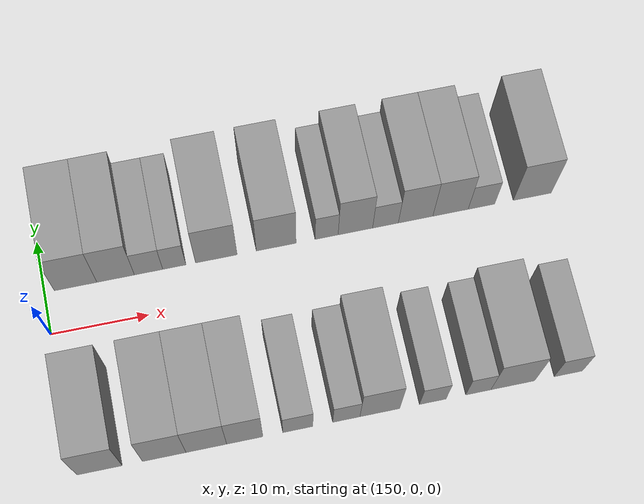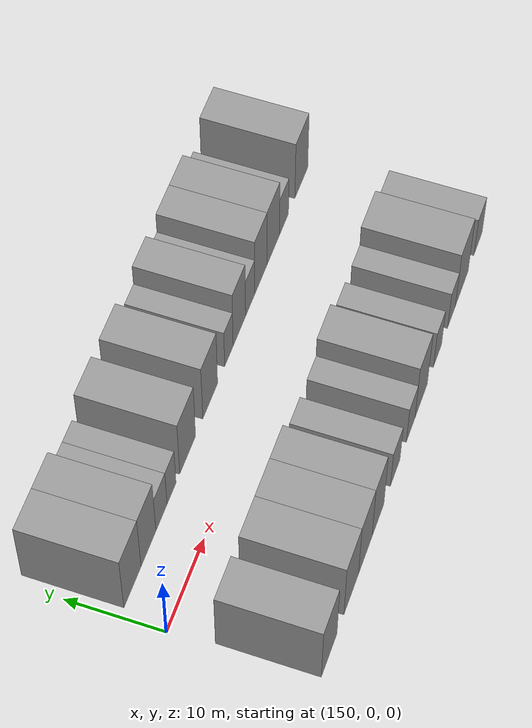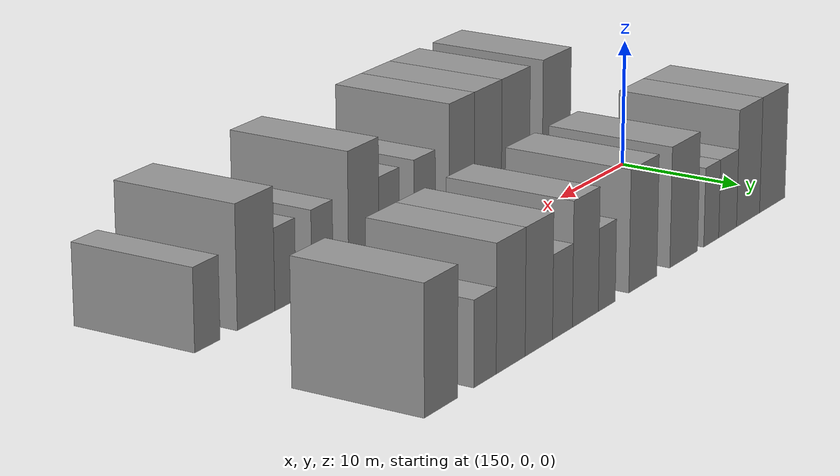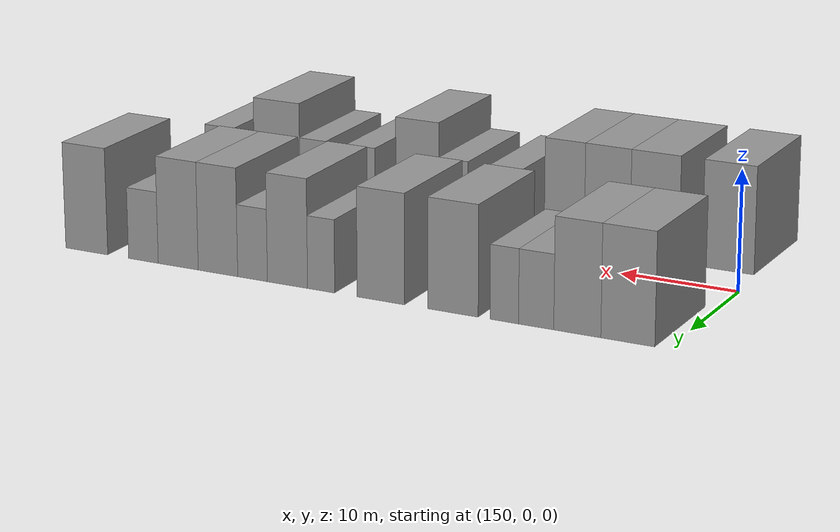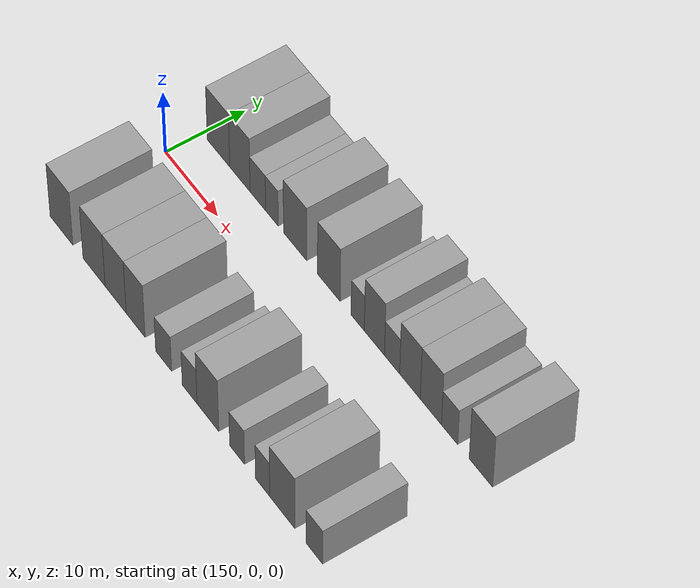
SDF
<sdf version="1.6">
 <world name="default">
  <model name="building_35">
   <static>1</static>
   <pose>153.2073 9.5000 0 0.000000 0.000000 1.570796</pose>
   <link name="link">
    <pose>0 0 4.50 0 0 0</pose>
    <collision name="collision"><geometry><box><size>10.0000 4.3690 9.0000</size></box></geometry></collision>
    <visual name="visual">
     <cast_shadows>0</cast_shadows>
     <geometry><box><size>10.0000 4.3690 9.0000</size></box></geometry>
     <material>
      <script>
       <uri>model://grey_wall/materials/scripts</uri>
       <uri>model://grey_wall/materials/textures</uri>
       <name>vrc/grey_wall</name>
      </script>
     </material>
    </visual>
   </link>
  </model>
  <model name="building_36">
   <static>1</static>
   <pose>157.3263 9.5000 0 0.000000 0.000000 1.570796</pose>
   <link name="link">
    <pose>0 0 4.50 0 0 0</pose>
    <collision name="collision"><geometry><box><size>10.0000 3.8691 9.0000</size></box></geometry></collision>
    <visual name="visual">
     <cast_shadows>0</cast_shadows>
     <geometry><box><size>10.0000 3.8691 9.0000</size></box></geometry>
     <material>
      <script>
       <uri>model://grey_wall/materials/scripts</uri>
       <uri>model://grey_wall/materials/textures</uri>
       <name>vrc/grey_wall</name>
      </script>
     </material>
    </visual>
   </link>
  </model>
  <model name="building_37">
   <static>1</static>
   <pose>160.7287 9.5000 0 0.000000 0.000000 1.570796</pose>
   <link name="link">
    <pose>0 0 3.00 0 0 0</pose>
    <collision name="collision"><geometry><box><size>10.0000 2.9357 6.0000</size></box></geometry></collision>
    <visual name="visual">
     <cast_shadows>0</cast_shadows>
     <geometry><box><size>10.0000 2.9357 6.0000</size></box></geometry>
     <material>
      <script>
       <uri>model://grey_wall/materials/scripts</uri>
       <uri>model://grey_wall/materials/textures</uri>
       <name>vrc/grey_wall</name>
      </script>
     </material>
    </visual>
   </link>
  </model>
  <model name="building_38">
   <static>1</static>
   <pose>163.3969 9.5000 0 0.000000 0.000000 1.570796</pose>
   <link name="link">
    <pose>0 0 3.00 0 0 0</pose>
    <collision name="collision"><geometry><box><size>10.0000 2.4005 6.0000</size></box></geometry></collision>
    <visual name="visual">
     <cast_shadows>0</cast_shadows>
     <geometry><box><size>10.0000 2.4005 6.0000</size></box></geometry>
     <material>
      <script>
       <uri>model://grey_wall/materials/scripts</uri>
       <uri>model://grey_wall/materials/textures</uri>
       <name>vrc/grey_wall</name>
      </script>
     </material>
    </visual>
   </link>
  </model>
  <model name="building_39">
   <static>1</static>
   <pose>167.7573 9.5000 0 0.000000 0.000000 1.570796</pose>
   <link name="link">
    <pose>0 0 4.50 0 0 0</pose>
    <collision name="collision"><geometry><box><size>10.0000 4.3204 9.0000</size></box></geometry></collision>
    <visual name="visual">
     <cast_shadows>0</cast_shadows>
     <geometry><box><size>10.0000 4.3204 9.0000</size></box></geometry>
     <material>
      <script>
       <uri>model://grey_wall/materials/scripts</uri>
       <uri>model://grey_wall/materials/textures</uri>
       <name>vrc/grey_wall</name>
      </script>
     </material>
    </visual>
   </link>
  </model>
  <model name="building_40">
   <static>1</static>
   <pose>173.9975 9.5000 0 0.000000 0.000000 1.570796</pose>
   <link name="link">
    <pose>0 0 4.50 0 0 0</pose>
    <collision name="collision"><geometry><box><size>10.0000 4.1599 9.0000</size></box></geometry></collision>
    <visual name="visual">
     <cast_shadows>0</cast_shadows>
     <geometry><box><size>10.0000 4.1599 9.0000</size></box></geometry>
     <material>
      <script>
       <uri>model://grey_wall/materials/scripts</uri>
       <uri>model://grey_wall/materials/textures</uri>
       <name>vrc/grey_wall</name>
      </script>
     </material>
    </visual>
   </link>
  </model>
  <model name="building_41">
   <static>1</static>
   <pose>179.2896 9.5000 0 0.000000 0.000000 1.570796</pose>
   <link name="link">
    <pose>0 0 3.00 0 0 0</pose>
    <collision name="collision"><geometry><box><size>10.0000 2.4242 6.0000</size></box></geometry></collision>
    <visual name="visual">
     <cast_shadows>0</cast_shadows>
     <geometry><box><size>10.0000 2.4242 6.0000</size></box></geometry>
     <material>
      <script>
       <uri>model://grey_wall/materials/scripts</uri>
       <uri>model://grey_wall/materials/textures</uri>
       <name>vrc/grey_wall</name>
      </script>
     </material>
    </visual>
   </link>
  </model>
  <model name="building_42">
   <static>1</static>
   <pose>182.3201 9.5000 0 0.000000 0.000000 1.570796</pose>
   <link name="link">
    <pose>0 0 4.50 0 0 0</pose>
    <collision name="collision"><geometry><box><size>10.0000 3.6369 9.0000</size></box></geometry></collision>
    <visual name="visual">
     <cast_shadows>0</cast_shadows>
     <geometry><box><size>10.0000 3.6369 9.0000</size></box></geometry>
     <material>
      <script>
       <uri>model://grey_wall/materials/scripts</uri>
       <uri>model://grey_wall/materials/textures</uri>
       <name>vrc/grey_wall</name>
      </script>
     </material>
    </visual>
   </link>
  </model>
  <model name="building_43">
   <static>1</static>
   <pose>185.5018 9.5000 0 0.000000 0.000000 1.570796</pose>
   <link name="link">
    <pose>0 0 3.00 0 0 0</pose>
    <collision name="collision"><geometry><box><size>10.0000 2.7267 6.0000</size></box></geometry></collision>
    <visual name="visual">
     <cast_shadows>0</cast_shadows>
     <geometry><box><size>10.0000 2.7267 6.0000</size></box></geometry>
     <material>
      <script>
       <uri>model://grey_wall/materials/scripts</uri>
       <uri>model://grey_wall/materials/textures</uri>
       <name>vrc/grey_wall</name>
      </script>
     </material>
    </visual>
   </link>
  </model>
  <model name="building_44">
   <static>1</static>
   <pose>188.6957 9.5000 0 0.000000 0.000000 1.570796</pose>
   <link name="link">
    <pose>0 0 4.50 0 0 0</pose>
    <collision name="collision"><geometry><box><size>10.0000 3.6610 9.0000</size></box></geometry></collision>
    <visual name="visual">
     <cast_shadows>0</cast_shadows>
     <geometry><box><size>10.0000 3.6610 9.0000</size></box></geometry>
     <material>
      <script>
       <uri>model://grey_wall/materials/scripts</uri>
       <uri>model://grey_wall/materials/textures</uri>
       <name>vrc/grey_wall</name>
      </script>
     </material>
    </visual>
   </link>
  </model>
  <model name="building_45">
   <static>1</static>
   <pose>192.4081 9.5000 0 0.000000 0.000000 1.570796</pose>
   <link name="link">
    <pose>0 0 4.50 0 0 0</pose>
    <collision name="collision"><geometry><box><size>10.0000 3.7639 9.0000</size></box></geometry></collision>
    <visual name="visual">
     <cast_shadows>0</cast_shadows>
     <geometry><box><size>10.0000 3.7639 9.0000</size></box></geometry>
     <material>
      <script>
       <uri>model://grey_wall/materials/scripts</uri>
       <uri>model://grey_wall/materials/textures</uri>
       <name>vrc/grey_wall</name>
      </script>
     </material>
    </visual>
   </link>
  </model>
  <model name="building_46">
   <static>1</static>
   <pose>195.7033 9.5000 0 0.000000 0.000000 1.570796</pose>
   <link name="link">
    <pose>0 0 3.00 0 0 0</pose>
    <collision name="collision"><geometry><box><size>10.0000 2.8263 6.0000</size></box></geometry></collision>
    <visual name="visual">
     <cast_shadows>0</cast_shadows>
     <geometry><box><size>10.0000 2.8263 6.0000</size></box></geometry>
     <material>
      <script>
       <uri>model://grey_wall/materials/scripts</uri>
       <uri>model://grey_wall/materials/textures</uri>
       <name>vrc/grey_wall</name>
      </script>
     </material>
    </visual>
   </link>
  </model>
  <model name="building_47">
   <static>1</static>
   <pose>201.1507 9.5000 0 0.000000 0.000000 1.570796</pose>
   <link name="link">
    <pose>0 0 4.50 0 0 0</pose>
    <collision name="collision"><geometry><box><size>10.0000 4.0687 9.0000</size></box></geometry></collision>
    <visual name="visual">
     <cast_shadows>0</cast_shadows>
     <geometry><box><size>10.0000 4.0687 9.0000</size></box></geometry>
     <material>
      <script>
       <uri>model://grey_wall/materials/scripts</uri>
       <uri>model://grey_wall/materials/textures</uri>
       <name>vrc/grey_wall</name>
      </script>
     </material>
    </visual>
   </link>
  </model>
  <model name="building_86">
   <static>1</static>
   <pose>152.6591 -9.5000 0 0.000000 0.000000 1.570796</pose>
   <link name="link">
    <pose>0 0 4.50 0 0 0</pose>
    <collision name="collision"><geometry><box><size>10.0000 4.4520 9.0000</size></box></geometry></collision>
    <visual name="visual">
     <cast_shadows>0</cast_shadows>
     <geometry><box><size>10.0000 4.4520 9.0000</size></box></geometry>
     <material>
      <script>
       <uri>model://grey_wall/materials/scripts</uri>
       <uri>model://grey_wall/materials/textures</uri>
       <name>vrc/grey_wall</name>
      </script>
     </material>
    </visual>
   </link>
  </model>
  <model name="building_87">
   <static>1</static>
   <pose>159.0327 -9.5000 0 0.000000 0.000000 1.570796</pose>
   <link name="link">
    <pose>0 0 4.50 0 0 0</pose>
    <collision name="collision"><geometry><box><size>10.0000 4.2951 9.0000</size></box></geometry></collision>
    <visual name="visual">
     <cast_shadows>0</cast_shadows>
     <geometry><box><size>10.0000 4.2951 9.0000</size></box></geometry>
     <material>
      <script>
       <uri>model://grey_wall/materials/scripts</uri>
       <uri>model://grey_wall/materials/textures</uri>
       <name>vrc/grey_wall</name>
      </script>
     </material>
    </visual>
   </link>
  </model>
  <model name="building_88">
   <static>1</static>
   <pose>163.2067 -9.5000 0 0.000000 0.000000 1.570796</pose>
   <link name="link">
    <pose>0 0 4.50 0 0 0</pose>
    <collision name="collision"><geometry><box><size>10.0000 4.0529 9.0000</size></box></geometry></collision>
    <visual name="visual">
     <cast_shadows>0</cast_shadows>
     <geometry><box><size>10.0000 4.0529 9.0000</size></box></geometry>
     <material>
      <script>
       <uri>model://grey_wall/materials/scripts</uri>
       <uri>model://grey_wall/materials/textures</uri>
       <name>vrc/grey_wall</name>
      </script>
     </material>
    </visual>
   </link>
  </model>
  <model name="building_89">
   <static>1</static>
   <pose>167.0358 -9.5000 0 0.000000 0.000000 1.570796</pose>
   <link name="link">
    <pose>0 0 4.50 0 0 0</pose>
    <collision name="collision"><geometry><box><size>10.0000 3.6054 9.0000</size></box></geometry></collision>
    <visual name="visual">
     <cast_shadows>0</cast_shadows>
     <geometry><box><size>10.0000 3.6054 9.0000</size></box></geometry>
     <material>
      <script>
       <uri>model://grey_wall/materials/scripts</uri>
       <uri>model://grey_wall/materials/textures</uri>
       <name>vrc/grey_wall</name>
      </script>
     </material>
    </visual>
   </link>
  </model>
  <model name="building_90">
   <static>1</static>
   <pose>172.3378 -9.5000 0 0.000000 0.000000 1.570796</pose>
   <link name="link">
    <pose>0 0 3.00 0 0 0</pose>
    <collision name="collision"><geometry><box><size>10.0000 2.9986 6.0000</size></box></geometry></collision>
    <visual name="visual">
     <cast_shadows>0</cast_shadows>
     <geometry><box><size>10.0000 2.9986 6.0000</size></box></geometry>
     <material>
      <script>
       <uri>model://grey_wall/materials/scripts</uri>
       <uri>model://grey_wall/materials/textures</uri>
       <name>vrc/grey_wall</name>
      </script>
     </material>
    </visual>
   </link>
  </model>
  <model name="building_91">
   <static>1</static>
   <pose>177.2059 -9.5000 0 0.000000 0.000000 1.570796</pose>
   <link name="link">
    <pose>0 0 3.00 0 0 0</pose>
    <collision name="collision"><geometry><box><size>10.0000 2.7375 6.0000</size></box></geometry></collision>
    <visual name="visual">
     <cast_shadows>0</cast_shadows>
     <geometry><box><size>10.0000 2.7375 6.0000</size></box></geometry>
     <material>
      <script>
       <uri>model://grey_wall/materials/scripts</uri>
       <uri>model://grey_wall/materials/textures</uri>
       <name>vrc/grey_wall</name>
      </script>
     </material>
    </visual>
   </link>
  </model>
  <model name="building_92">
   <static>1</static>
   <pose>180.5887 -9.5000 0 0.000000 0.000000 1.570796</pose>
   <link name="link">
    <pose>0 0 4.50 0 0 0</pose>
    <collision name="collision"><geometry><box><size>10.0000 4.0280 9.0000</size></box></geometry></collision>
    <visual name="visual">
     <cast_shadows>0</cast_shadows>
     <geometry><box><size>10.0000 4.0280 9.0000</size></box></geometry>
     <material>
      <script>
       <uri>model://grey_wall/materials/scripts</uri>
       <uri>model://grey_wall/materials/textures</uri>
       <name>vrc/grey_wall</name>
      </script>
     </material>
    </visual>
   </link>
  </model>
  <model name="building_93">
   <static>1</static>
   <pose>185.9545 -9.5000 0 0.000000 0.000000 1.570796</pose>
   <link name="link">
    <pose>0 0 3.00 0 0 0</pose>
    <collision name="collision"><geometry><box><size>10.0000 2.7037 6.0000</size></box></geometry></collision>
    <visual name="visual">
     <cast_shadows>0</cast_shadows>
     <geometry><box><size>10.0000 2.7037 6.0000</size></box></geometry>
     <material>
      <script>
       <uri>model://grey_wall/materials/scripts</uri>
       <uri>model://grey_wall/materials/textures</uri>
       <name>vrc/grey_wall</name>
      </script>
     </material>
    </visual>
   </link>
  </model>
  <model name="building_94">
   <static>1</static>
   <pose>190.5932 -9.5000 0 0.000000 0.000000 1.570796</pose>
   <link name="link">
    <pose>0 0 3.00 0 0 0</pose>
    <collision name="collision"><geometry><box><size>10.0000 2.5736 6.0000</size></box></geometry></collision>
    <visual name="visual">
     <cast_shadows>0</cast_shadows>
     <geometry><box><size>10.0000 2.5736 6.0000</size></box></geometry>
     <material>
      <script>
       <uri>model://grey_wall/materials/scripts</uri>
       <uri>model://grey_wall/materials/textures</uri>
       <name>vrc/grey_wall</name>
      </script>
     </material>
    </visual>
   </link>
  </model>
  <model name="building_95">
   <static>1</static>
   <pose>194.1263 -9.5000 0 0.000000 0.000000 1.570796</pose>
   <link name="link">
    <pose>0 0 4.50 0 0 0</pose>
    <collision name="collision"><geometry><box><size>10.0000 4.4927 9.0000</size></box></geometry></collision>
    <visual name="visual">
     <cast_shadows>0</cast_shadows>
     <geometry><box><size>10.0000 4.4927 9.0000</size></box></geometry>
     <material>
      <script>
       <uri>model://grey_wall/materials/scripts</uri>
       <uri>model://grey_wall/materials/textures</uri>
       <name>vrc/grey_wall</name>
      </script>
     </material>
    </visual>
   </link>
  </model>
  <model name="building_96">
   <static>1</static>
   <pose>199.8323 -9.5000 0 0.000000 0.000000 1.570796</pose>
   <link name="link">
    <pose>0 0 3.00 0 0 0</pose>
    <collision name="collision"><geometry><box><size>10.0000 2.9193 6.0000</size></box></geometry></collision>
    <visual name="visual">
     <cast_shadows>0</cast_shadows>
     <geometry><box><size>10.0000 2.9193 6.0000</size></box></geometry>
     <material>
      <script>
       <uri>model://grey_wall/materials/scripts</uri>
       <uri>model://grey_wall/materials/textures</uri>
       <name>vrc/grey_wall</name>
      </script>
     </material>
    </visual>
   </link>
  </model>
 </world>
</sdf>
